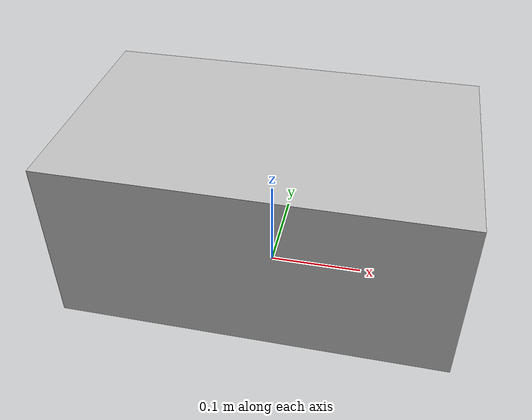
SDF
<?xml version="1.0" ?>
<sdf version="1.5">
  <model name="small box">
    <pose>0 0 0.09  0 0 0</pose>
    <static>false</static>
    <link name="link">
      <inertial>
        <mass>2.0</mass>
        <inertia>
          <ixx>0.0008611666666666669</ixx>
          <ixy>0</ixy>
          <ixz>0</ixz>
          <iyy>0.0008611666666666669</iyy>
          <iyz>0</iyz>
          <izz>0.0008611666666666669</izz>
        </inertia>
      </inertial>

      <collision name="collision">
        <geometry>
          <box>
              <size>0.40 0.23 0.18</size>
          </box>
        </geometry>
	<surface>
          <contact>
            <ode>
              <max_vel>0.1</max_vel>
              <min_depth>0.001</min_depth>
            </ode>
          </contact>
        </surface>
      </collision>
      <visual name="visual">
        <geometry>
          <mesh>
            <uri>model://small_box/meshes/small_box.dae</uri>
          </mesh>
	</geometry>
      </visual>
    </link>
  </model>
</sdf>
